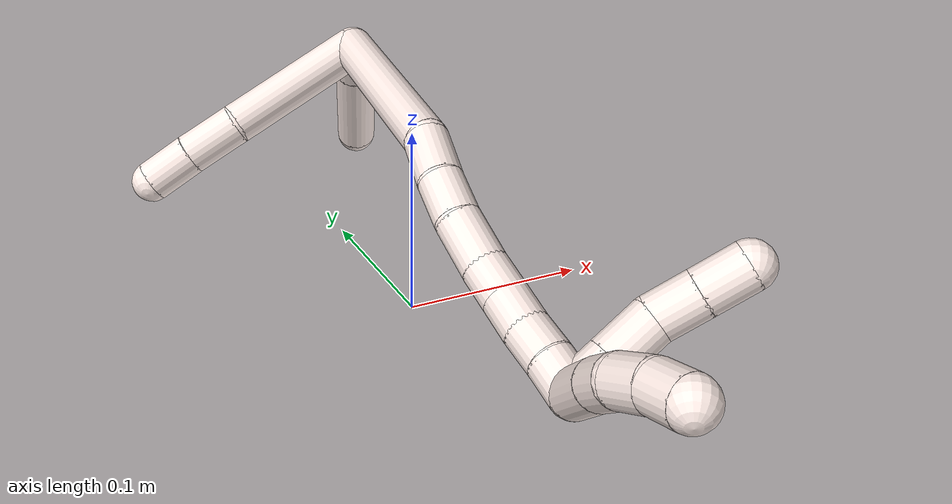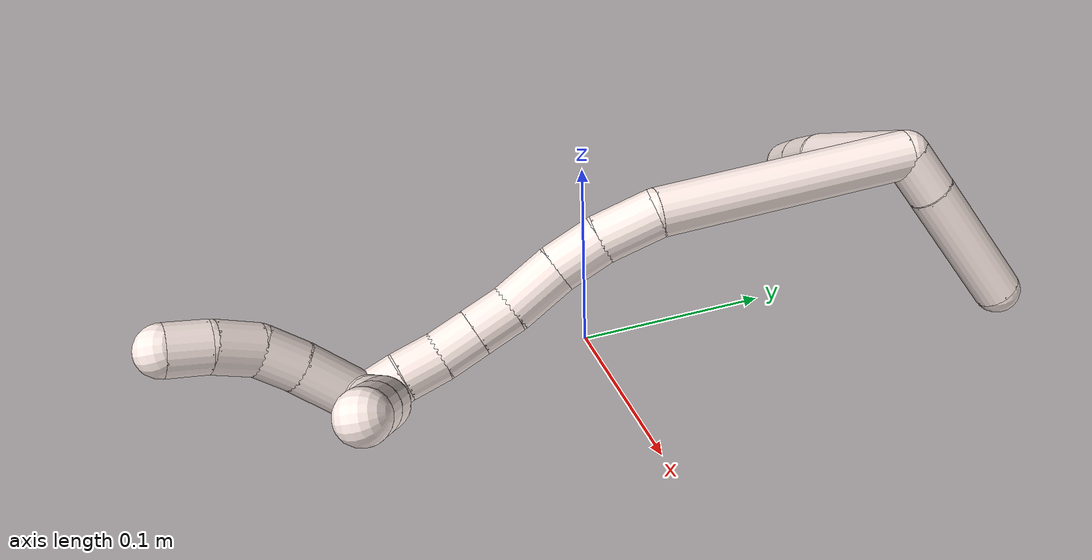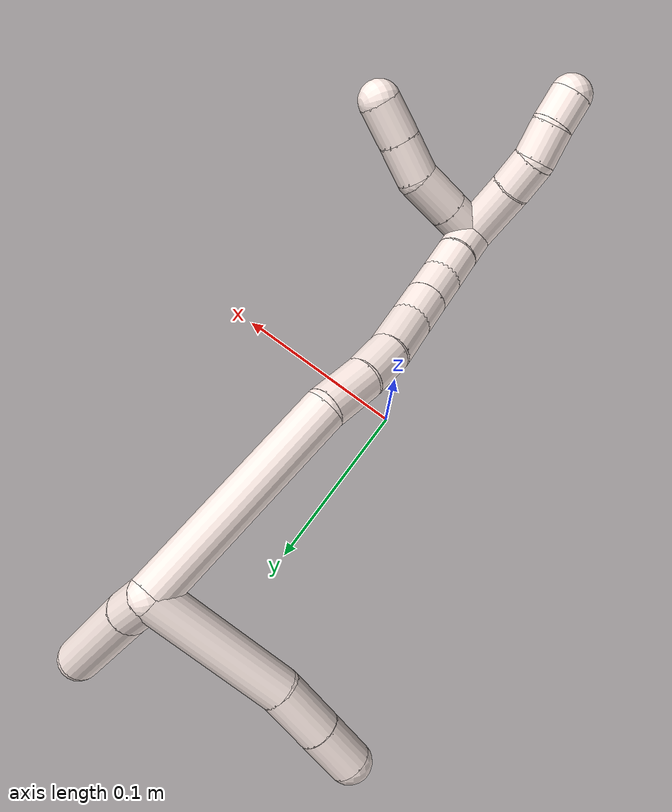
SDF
<sdf version="1.7">
 <world name="default">
  <model name="11">
   <static>0</static>
   <link name="11">
    <collision name="collision-cylinder-e_1_2_8">
     <pose>-0.031035 0.018632 -0.024499 -2.49139 -0.789532 1.78119</pose>
     <geometry><cylinder><radius>0.0125</radius><length>0.08742</length></cylinder></geometry>
     <surface>
      <friction><ode><mu>1.16</mu><mu2>1.16</mu2><slip1>0</slip1><slip2>0</slip2></ode></friction>
      <contact><ode><kp>1e+06</kp><kd>1</kd><max_vel>0</max_vel><min_depth>0.001</min_depth></ode></contact>
     </surface>
    </collision>
    <visual name="visual-cylinder-e_1_2_8">
     <pose>-0.031035 0.018632 -0.024499 -2.49139 -0.789532 1.78119</pose>
     <geometry><cylinder><radius>0.0125</radius><length>0.08742</length></cylinder></geometry>
     <material><ambient>1 0.933333 0.909804 1</ambient></material>
    </visual>
    <collision name="collision-cylinder-e_2_8_9">
     <pose>-0.074308 0.046354 -0.056192 -2.24022 -0.812494 1.45338</pose>
     <geometry><cylinder><radius>0.0125</radius><length>0.033712</length></cylinder></geometry>
     <surface>
      <friction><ode><mu>1.16</mu><mu2>1.16</mu2><slip1>0</slip1><slip2>0</slip2></ode></friction>
      <contact><ode><kp>1e+06</kp><kd>1</kd><max_vel>0</max_vel><min_depth>0.001</min_depth></ode></contact>
     </surface>
    </collision>
    <visual name="visual-cylinder-e_2_8_9">
     <pose>-0.074308 0.046354 -0.056192 -2.24022 -0.812494 1.45338</pose>
     <geometry><cylinder><radius>0.0125</radius><length>0.033712</length></cylinder></geometry>
     <material><ambient>1 0.933333 0.909804 1</ambient></material>
    </visual>
    <collision name="collision-cylinder-e_3_9_6">
     <pose>-0.09669 0.063643 -0.069566 -2.21685 -0.779414 1.37847</pose>
     <geometry><cylinder><radius>0.0125</radius><length>0.028868</length></cylinder></geometry>
     <surface>
      <friction><ode><mu>1.16</mu><mu2>1.16</mu2><slip1>0</slip1><slip2>0</slip2></ode></friction>
      <contact><ode><kp>1e+06</kp><kd>1</kd><max_vel>0</max_vel><min_depth>0.001</min_depth></ode></contact>
     </surface>
    </collision>
    <visual name="visual-cylinder-e_3_9_6">
     <pose>-0.09669 0.063643 -0.069566 -2.21685 -0.779414 1.37847</pose>
     <geometry><cylinder><radius>0.0125</radius><length>0.028868</length></cylinder></geometry>
     <material><ambient>1 0.933333 0.909804 1</ambient></material>
    </visual>
    <collision name="collision-cylinder-e_1_2_10">
     <pose>0.001802 0.011792 0.004264 -1.22382 0.142731 -0.10025</pose>
     <geometry><cylinder><radius>0.0125</radius><length>0.025336</length></cylinder></geometry>
     <surface>
      <friction><ode><mu>1.16</mu><mu2>1.16</mu2><slip1>0</slip1><slip2>0</slip2></ode></friction>
      <contact><ode><kp>1e+06</kp><kd>1</kd><max_vel>0</max_vel><min_depth>0.001</min_depth></ode></contact>
     </surface>
    </collision>
    <visual name="visual-cylinder-e_1_2_10">
     <pose>0.001802 0.011792 0.004264 -1.22382 0.142731 -0.10025</pose>
     <geometry><cylinder><radius>0.0125</radius><length>0.025336</length></cylinder></geometry>
     <material><ambient>1 0.933333 0.909804 1</ambient></material>
    </visual>
    <collision name="collision-cylinder-e_2_10_5">
     <pose>0.006908 0.058813 0.02043 -1.24501 0.088617 -0.06362</pose>
     <geometry><cylinder><radius>0.0125</radius><length>0.074664</length></cylinder></geometry>
     <surface>
      <friction><ode><mu>1.16</mu><mu2>1.16</mu2><slip1>0</slip1><slip2>0</slip2></ode></friction>
      <contact><ode><kp>1e+06</kp><kd>1</kd><max_vel>0</max_vel><min_depth>0.001</min_depth></ode></contact>
     </surface>
    </collision>
    <visual name="visual-cylinder-e_2_10_5">
     <pose>0.006908 0.058813 0.02043 -1.24501 0.088617 -0.06362</pose>
     <geometry><cylinder><radius>0.0125</radius><length>0.074664</length></cylinder></geometry>
     <material><ambient>1 0.933333 0.909804 1</ambient></material>
    </visual>
    <collision name="collision-cylinder-e_1_2_11">
     <pose>0.02507 -0.016226 -0.059191 2.87404 0.387788 1.93991</pose>
     <geometry><cylinder><radius>0.0125</radius><length>0.132595</length></cylinder></geometry>
     <surface>
      <friction><ode><mu>1.16</mu><mu2>1.16</mu2><slip1>0</slip1><slip2>0</slip2></ode></friction>
      <contact><ode><kp>1e+06</kp><kd>1</kd><max_vel>0</max_vel><min_depth>0.001</min_depth></ode></contact>
     </surface>
    </collision>
    <visual name="visual-cylinder-e_1_2_11">
     <pose>0.02507 -0.016226 -0.059191 2.87404 0.387788 1.93991</pose>
     <geometry><cylinder><radius>0.0125</radius><length>0.132595</length></cylinder></geometry>
     <material><ambient>1 0.933333 0.909804 1</ambient></material>
    </visual>
    <collision name="collision-cylinder-e_2_11_12">
     <pose>0.055137 -0.031484 -0.132849 -3.07481 0.331904 -2.74788</pose>
     <geometry><cylinder><radius>0.0125</radius><length>0.030672</length></cylinder></geometry>
     <surface>
      <friction><ode><mu>1.16</mu><mu2>1.16</mu2><slip1>0</slip1><slip2>0</slip2></ode></friction>
      <contact><ode><kp>1e+06</kp><kd>1</kd><max_vel>0</max_vel><min_depth>0.001</min_depth></ode></contact>
     </surface>
    </collision>
    <visual name="visual-cylinder-e_2_11_12">
     <pose>0.055137 -0.031484 -0.132849 -3.07481 0.331904 -2.74788</pose>
     <geometry><cylinder><radius>0.0125</radius><length>0.030672</length></cylinder></geometry>
     <material><ambient>1 0.933333 0.909804 1</ambient></material>
    </visual>
    <collision name="collision-cylinder-e_3_12_13">
     <pose>0.065627 -0.02849 -0.15872 -2.96576 0.442818 -2.39515</pose>
     <geometry><cylinder><radius>0.0125</radius><length>0.025638</length></cylinder></geometry>
     <surface>
      <friction><ode><mu>1.16</mu><mu2>1.16</mu2><slip1>0</slip1><slip2>0</slip2></ode></friction>
      <contact><ode><kp>1e+06</kp><kd>1</kd><max_vel>0</max_vel><min_depth>0.001</min_depth></ode></contact>
     </surface>
    </collision>
    <visual name="visual-cylinder-e_3_12_13">
     <pose>0.065627 -0.02849 -0.15872 -2.96576 0.442818 -2.39515</pose>
     <geometry><cylinder><radius>0.0125</radius><length>0.025638</length></cylinder></geometry>
     <material><ambient>1 0.933333 0.909804 1</ambient></material>
    </visual>
    <collision name="collision-cylinder-e_4_13_14">
     <pose>0.079207 -0.023412 -0.182154 -2.89312 0.577491 -2.34564</pose>
     <geometry><cylinder><radius>0.0125</radius><length>0.029627</length></cylinder></geometry>
     <surface>
      <friction><ode><mu>1.16</mu><mu2>1.16</mu2><slip1>0</slip1><slip2>0</slip2></ode></friction>
      <contact><ode><kp>1e+06</kp><kd>1</kd><max_vel>0</max_vel><min_depth>0.001</min_depth></ode></contact>
     </surface>
    </collision>
    <visual name="visual-cylinder-e_4_13_14">
     <pose>0.079207 -0.023412 -0.182154 -2.89312 0.577491 -2.34564</pose>
     <geometry><cylinder><radius>0.0125</radius><length>0.029627</length></cylinder></geometry>
     <material><ambient>1 0.933333 0.909804 1</ambient></material>
    </visual>
    <collision name="collision-cylinder-e_5_14_15">
     <pose>0.092863 -0.019667 -0.202787 -3.06127 0.57305 -2.87049</pose>
     <geometry><cylinder><radius>0.0125</radius><length>0.020544</length></cylinder></geometry>
     <surface>
      <friction><ode><mu>1.16</mu><mu2>1.16</mu2><slip1>0</slip1><slip2>0</slip2></ode></friction>
      <contact><ode><kp>1e+06</kp><kd>1</kd><max_vel>0</max_vel><min_depth>0.001</min_depth></ode></contact>
     </surface>
    </collision>
    <visual name="visual-cylinder-e_5_14_15">
     <pose>0.092863 -0.019667 -0.202787 -3.06127 0.57305 -2.87049</pose>
     <geometry><cylinder><radius>0.0125</radius><length>0.020544</length></cylinder></geometry>
     <material><ambient>1 0.933333 0.909804 1</ambient></material>
    </visual>
    <collision name="collision-cylinder-e_6_15_16">
     <pose>0.103885 -0.018253 -0.219866 -3.05667 0.570052 -2.85358</pose>
     <geometry><cylinder><radius>0.0125</radius><length>0.020208</length></cylinder></geometry>
     <surface>
      <friction><ode><mu>1.16</mu><mu2>1.16</mu2><slip1>0</slip1><slip2>0</slip2></ode></friction>
      <contact><ode><kp>1e+06</kp><kd>1</kd><max_vel>0</max_vel><min_depth>0.001</min_depth></ode></contact>
     </surface>
    </collision>
    <visual name="visual-cylinder-e_6_15_16">
     <pose>0.103885 -0.018253 -0.219866 -3.05667 0.570052 -2.85358</pose>
     <geometry><cylinder><radius>0.0125</radius><length>0.020208</length></cylinder></geometry>
     <material><ambient>1 0.933333 0.909804 1</ambient></material>
    </visual>
    <collision name="collision-cylinder-e_7_16_17">
     <pose>0.114833 -0.018013 -0.236988 3.08597 0.565385 2.95063</pose>
     <geometry><cylinder><radius>0.0125</radius><length>0.020512</length></cylinder></geometry>
     <surface>
      <friction><ode><mu>1.16</mu><mu2>1.16</mu2><slip1>0</slip1><slip2>0</slip2></ode></friction>
      <contact><ode><kp>1e+06</kp><kd>1</kd><max_vel>0</max_vel><min_depth>0.001</min_depth></ode></contact>
     </surface>
    </collision>
    <visual name="visual-cylinder-e_7_16_17">
     <pose>0.114833 -0.018013 -0.236988 3.08597 0.565385 2.95063</pose>
     <geometry><cylinder><radius>0.0125</radius><length>0.020512</length></cylinder></geometry>
     <material><ambient>1 0.933333 0.909804 1</ambient></material>
    </visual>
    <collision name="collision-cylinder-e_8_17_1">
     <pose>0.125778 -0.018125 -0.254132 -3.0982 0.569963 -2.99371</pose>
     <geometry><cylinder><radius>0.0125</radius><length>0.020204</length></cylinder></geometry>
     <surface>
      <friction><ode><mu>1.16</mu><mu2>1.16</mu2><slip1>0</slip1><slip2>0</slip2></ode></friction>
      <contact><ode><kp>1e+06</kp><kd>1</kd><max_vel>0</max_vel><min_depth>0.001</min_depth></ode></contact>
     </surface>
    </collision>
    <visual name="visual-cylinder-e_8_17_1">
     <pose>0.125778 -0.018125 -0.254132 -3.0982 0.569963 -2.99371</pose>
     <geometry><cylinder><radius>0.0125</radius><length>0.020204</length></cylinder></geometry>
     <material><ambient>1 0.933333 0.909804 1</ambient></material>
    </visual>
    <collision name="collision-cylinder-e_1_1_18">
     <pose>0.13269 -0.033422 -0.272005 2.11014 0.079853 0.140702</pose>
     <geometry><cylinder><radius>0.0125</radius><length>0.036632</length></cylinder></geometry>
     <surface>
      <friction><ode><mu>1.16</mu><mu2>1.16</mu2><slip1>0</slip1><slip2>0</slip2></ode></friction>
      <contact><ode><kp>1e+06</kp><kd>1</kd><max_vel>0</max_vel><min_depth>0.001</min_depth></ode></contact>
     </surface>
    </collision>
    <visual name="visual-cylinder-e_1_1_18">
     <pose>0.13269 -0.033422 -0.272005 2.11014 0.079853 0.140702</pose>
     <geometry><cylinder><radius>0.0125</radius><length>0.036632</length></cylinder></geometry>
     <material><ambient>1 0.933333 0.909804 1</ambient></material>
    </visual>
    <collision name="collision-cylinder-e_2_18_19">
     <pose>0.135729 -0.057746 -0.287086 2.15329 0.151031 0.279054</pose>
     <geometry><cylinder><radius>0.0125</radius><length>0.020975</length></cylinder></geometry>
     <surface>
      <friction><ode><mu>1.16</mu><mu2>1.16</mu2><slip1>0</slip1><slip2>0</slip2></ode></friction>
      <contact><ode><kp>1e+06</kp><kd>1</kd><max_vel>0</max_vel><min_depth>0.001</min_depth></ode></contact>
     </surface>
    </collision>
    <visual name="visual-cylinder-e_2_18_19">
     <pose>0.135729 -0.057746 -0.287086 2.15329 0.151031 0.279054</pose>
     <geometry><cylinder><radius>0.0125</radius><length>0.020975</length></cylinder></geometry>
     <material><ambient>1 0.933333 0.909804 1</ambient></material>
    </visual>
    <collision name="collision-cylinder-e_3_19_20">
     <pose>0.142193 -0.074043 -0.299239 2.27199 0.454559 0.924026</pose>
     <geometry><cylinder><radius>0.0125</radius><length>0.022253</length></cylinder></geometry>
     <surface>
      <friction><ode><mu>1.16</mu><mu2>1.16</mu2><slip1>0</slip1><slip2>0</slip2></ode></friction>
      <contact><ode><kp>1e+06</kp><kd>1</kd><max_vel>0</max_vel><min_depth>0.001</min_depth></ode></contact>
     </surface>
    </collision>
    <visual name="visual-cylinder-e_3_19_20">
     <pose>0.142193 -0.074043 -0.299239 2.27199 0.454559 0.924026</pose>
     <geometry><cylinder><radius>0.0125</radius><length>0.022253</length></cylinder></geometry>
     <material><ambient>1 0.933333 0.909804 1</ambient></material>
    </visual>
    <collision name="collision-cylinder-e_4_20_4">
     <pose>0.151739 -0.086934 -0.312905 2.51245 0.481232 1.29225</pose>
     <geometry><cylinder><radius>0.0125</radius><length>0.02014</length></cylinder></geometry>
     <surface>
      <friction><ode><mu>1.16</mu><mu2>1.16</mu2><slip1>0</slip1><slip2>0</slip2></ode></friction>
      <contact><ode><kp>1e+06</kp><kd>1</kd><max_vel>0</max_vel><min_depth>0.001</min_depth></ode></contact>
     </surface>
    </collision>
    <visual name="visual-cylinder-e_4_20_4">
     <pose>0.151739 -0.086934 -0.312905 2.51245 0.481232 1.29225</pose>
     <geometry><cylinder><radius>0.0125</radius><length>0.02014</length></cylinder></geometry>
     <material><ambient>1 0.933333 0.909804 1</ambient></material>
    </visual>
    <collision name="collision-cylinder-e_1_1_21">
     <pose>0.138168 -0.023725 -0.256216 0.749586 0.669869 0.272143</pose>
     <geometry><cylinder><radius>0.0125</radius><length>0.022351</length></cylinder></geometry>
     <surface>
      <friction><ode><mu>1.16</mu><mu2>1.16</mu2><slip1>0</slip1><slip2>0</slip2></ode></friction>
      <contact><ode><kp>1e+06</kp><kd>1</kd><max_vel>0</max_vel><min_depth>0.001</min_depth></ode></contact>
     </surface>
    </collision>
    <visual name="visual-cylinder-e_1_1_21">
     <pose>0.138168 -0.023725 -0.256216 0.749586 0.669869 0.272143</pose>
     <geometry><cylinder><radius>0.0125</radius><length>0.022351</length></cylinder></geometry>
     <material><ambient>1 0.933333 0.909804 1</ambient></material>
    </visual>
    <collision name="collision-cylinder-e_2_21_22">
     <pose>0.153788 -0.037162 -0.241776 0.749281 0.669725 0.27196</pose>
     <geometry><cylinder><radius>0.0125</radius><length>0.02797</length></cylinder></geometry>
     <surface>
      <friction><ode><mu>1.16</mu><mu2>1.16</mu2><slip1>0</slip1><slip2>0</slip2></ode></friction>
      <contact><ode><kp>1e+06</kp><kd>1</kd><max_vel>0</max_vel><min_depth>0.001</min_depth></ode></contact>
     </surface>
    </collision>
    <visual name="visual-cylinder-e_2_21_22">
     <pose>0.153788 -0.037162 -0.241776 0.749281 0.669725 0.27196</pose>
     <geometry><cylinder><radius>0.0125</radius><length>0.02797</length></cylinder></geometry>
     <material><ambient>1 0.933333 0.909804 1</ambient></material>
    </visual>
    <collision name="collision-cylinder-e_3_22_23">
     <pose>0.171459 -0.052251 -0.230363 1.15276 0.822917 0.552765</pose>
     <geometry><cylinder><radius>0.0125</radius><length>0.024523</length></cylinder></geometry>
     <surface>
      <friction><ode><mu>1.16</mu><mu2>1.16</mu2><slip1>0</slip1><slip2>0</slip2></ode></friction>
      <contact><ode><kp>1e+06</kp><kd>1</kd><max_vel>0</max_vel><min_depth>0.001</min_depth></ode></contact>
     </surface>
    </collision>
    <visual name="visual-cylinder-e_3_22_23">
     <pose>0.171459 -0.052251 -0.230363 1.15276 0.822917 0.552765</pose>
     <geometry><cylinder><radius>0.0125</radius><length>0.024523</length></cylinder></geometry>
     <material><ambient>1 0.933333 0.909804 1</ambient></material>
    </visual>
    <collision name="collision-cylinder-e_4_23_3">
     <pose>0.189681 -0.067605 -0.223352 1.13239 0.824257 0.542058</pose>
     <geometry><cylinder><radius>0.0125</radius><length>0.025155</length></cylinder></geometry>
     <surface>
      <friction><ode><mu>1.16</mu><mu2>1.16</mu2><slip1>0</slip1><slip2>0</slip2></ode></friction>
      <contact><ode><kp>1e+06</kp><kd>1</kd><max_vel>0</max_vel><min_depth>0.001</min_depth></ode></contact>
     </surface>
    </collision>
    <visual name="visual-cylinder-e_4_23_3">
     <pose>0.189681 -0.067605 -0.223352 1.13239 0.824257 0.542058</pose>
     <geometry><cylinder><radius>0.0125</radius><length>0.025155</length></cylinder></geometry>
     <material><ambient>1 0.933333 0.909804 1</ambient></material>
    </visual>
    <collision name="collision-sphere-3">
     <pose>0.198914 -0.075339 -0.219726 0 -0 0</pose>
     <geometry><sphere><radius>0.0125</radius></sphere></geometry>
     <surface>
      <friction><ode><mu>1.16</mu><mu2>1.16</mu2><slip1>0</slip1><slip2>0</slip2></ode></friction>
      <contact><ode><kp>1e+06</kp><kd>1</kd><max_vel>0</max_vel><min_depth>0.001</min_depth></ode></contact>
     </surface>
    </collision>
    <visual name="visual-sphere-3">
     <pose>0.198914 -0.075339 -0.219726 0 -0 0</pose>
     <geometry><sphere><radius>0.0125</radius></sphere></geometry>
     <material><ambient>1 0.933333 0.909804 1</ambient></material>
    </visual>
    <collision name="collision-sphere-23">
     <pose>0.180449 -0.059872 -0.226978 0 -0 0</pose>
     <geometry><sphere><radius>0.0125</radius></sphere></geometry>
     <surface>
      <friction><ode><mu>1.16</mu><mu2>1.16</mu2><slip1>0</slip1><slip2>0</slip2></ode></friction>
      <contact><ode><kp>1e+06</kp><kd>1</kd><max_vel>0</max_vel><min_depth>0.001</min_depth></ode></contact>
     </surface>
    </collision>
    <visual name="visual-sphere-23">
     <pose>0.180449 -0.059872 -0.226978 0 -0 0</pose>
     <geometry><sphere><radius>0.0125</radius></sphere></geometry>
     <material><ambient>1 0.933333 0.909804 1</ambient></material>
    </visual>
    <collision name="collision-sphere-22">
     <pose>0.16247 -0.04463 -0.233748 0 -0 0</pose>
     <geometry><sphere><radius>0.0125</radius></sphere></geometry>
     <surface>
      <friction><ode><mu>1.16</mu><mu2>1.16</mu2><slip1>0</slip1><slip2>0</slip2></ode></friction>
      <contact><ode><kp>1e+06</kp><kd>1</kd><max_vel>0</max_vel><min_depth>0.001</min_depth></ode></contact>
     </surface>
    </collision>
    <visual name="visual-sphere-22">
     <pose>0.16247 -0.04463 -0.233748 0 -0 0</pose>
     <geometry><sphere><radius>0.0125</radius></sphere></geometry>
     <material><ambient>1 0.933333 0.909804 1</ambient></material>
    </visual>
    <collision name="collision-sphere-21">
     <pose>0.145107 -0.029694 -0.249804 0 -0 0</pose>
     <geometry><sphere><radius>0.0125</radius></sphere></geometry>
     <surface>
      <friction><ode><mu>1.16</mu><mu2>1.16</mu2><slip1>0</slip1><slip2>0</slip2></ode></friction>
      <contact><ode><kp>1e+06</kp><kd>1</kd><max_vel>0</max_vel><min_depth>0.001</min_depth></ode></contact>
     </surface>
    </collision>
    <visual name="visual-sphere-21">
     <pose>0.145107 -0.029694 -0.249804 0 -0 0</pose>
     <geometry><sphere><radius>0.0125</radius></sphere></geometry>
     <material><ambient>1 0.933333 0.909804 1</ambient></material>
    </visual>
    <collision name="collision-sphere-4">
     <pose>0.1564 -0.092187 -0.320122 0 -0 0</pose>
     <geometry><sphere><radius>0.0125</radius></sphere></geometry>
     <surface>
      <friction><ode><mu>1.16</mu><mu2>1.16</mu2><slip1>0</slip1><slip2>0</slip2></ode></friction>
      <contact><ode><kp>1e+06</kp><kd>1</kd><max_vel>0</max_vel><min_depth>0.001</min_depth></ode></contact>
     </surface>
    </collision>
    <visual name="visual-sphere-4">
     <pose>0.1564 -0.092187 -0.320122 0 -0 0</pose>
     <geometry><sphere><radius>0.0125</radius></sphere></geometry>
     <material><ambient>1 0.933333 0.909804 1</ambient></material>
    </visual>
    <collision name="collision-sphere-20">
     <pose>0.147078 -0.081681 -0.305688 0 -0 0</pose>
     <geometry><sphere><radius>0.0125</radius></sphere></geometry>
     <surface>
      <friction><ode><mu>1.16</mu><mu2>1.16</mu2><slip1>0</slip1><slip2>0</slip2></ode></friction>
      <contact><ode><kp>1e+06</kp><kd>1</kd><max_vel>0</max_vel><min_depth>0.001</min_depth></ode></contact>
     </surface>
    </collision>
    <visual name="visual-sphere-20">
     <pose>0.147078 -0.081681 -0.305688 0 -0 0</pose>
     <geometry><sphere><radius>0.0125</radius></sphere></geometry>
     <material><ambient>1 0.933333 0.909804 1</ambient></material>
    </visual>
    <collision name="collision-sphere-5">
     <pose>0.010212 0.094043 0.032331 0 -0 0</pose>
     <geometry><sphere><radius>0.0125</radius></sphere></geometry>
     <surface>
      <friction><ode><mu>1.16</mu><mu2>1.16</mu2><slip1>0</slip1><slip2>0</slip2></ode></friction>
      <contact><ode><kp>1e+06</kp><kd>1</kd><max_vel>0</max_vel><min_depth>0.001</min_depth></ode></contact>
     </surface>
    </collision>
    <visual name="visual-sphere-5">
     <pose>0.010212 0.094043 0.032331 0 -0 0</pose>
     <geometry><sphere><radius>0.0125</radius></sphere></geometry>
     <material><ambient>1 0.933333 0.909804 1</ambient></material>
    </visual>
    <collision name="collision-sphere-10">
     <pose>0.003604 0.023584 0.008528 0 -0 0</pose>
     <geometry><sphere><radius>0.0125</radius></sphere></geometry>
     <surface>
      <friction><ode><mu>1.16</mu><mu2>1.16</mu2><slip1>0</slip1><slip2>0</slip2></ode></friction>
      <contact><ode><kp>1e+06</kp><kd>1</kd><max_vel>0</max_vel><min_depth>0.001</min_depth></ode></contact>
     </surface>
    </collision>
    <visual name="visual-sphere-10">
     <pose>0.003604 0.023584 0.008528 0 -0 0</pose>
     <geometry><sphere><radius>0.0125</radius></sphere></geometry>
     <material><ambient>1 0.933333 0.909804 1</ambient></material>
    </visual>
    <collision name="collision-sphere-6">
     <pose>-0.106836 0.071841 -0.075748 0 -0 0</pose>
     <geometry><sphere><radius>0.0125</radius></sphere></geometry>
     <surface>
      <friction><ode><mu>1.16</mu><mu2>1.16</mu2><slip1>0</slip1><slip2>0</slip2></ode></friction>
      <contact><ode><kp>1e+06</kp><kd>1</kd><max_vel>0</max_vel><min_depth>0.001</min_depth></ode></contact>
     </surface>
    </collision>
    <visual name="visual-sphere-6">
     <pose>-0.106836 0.071841 -0.075748 0 -0 0</pose>
     <geometry><sphere><radius>0.0125</radius></sphere></geometry>
     <material><ambient>1 0.933333 0.909804 1</ambient></material>
    </visual>
    <collision name="collision-sphere-9">
     <pose>-0.086545 0.055444 -0.063385 0 -0 0</pose>
     <geometry><sphere><radius>0.0125</radius></sphere></geometry>
     <surface>
      <friction><ode><mu>1.16</mu><mu2>1.16</mu2><slip1>0</slip1><slip2>0</slip2></ode></friction>
      <contact><ode><kp>1e+06</kp><kd>1</kd><max_vel>0</max_vel><min_depth>0.001</min_depth></ode></contact>
     </surface>
    </collision>
    <visual name="visual-sphere-9">
     <pose>-0.086545 0.055444 -0.063385 0 -0 0</pose>
     <geometry><sphere><radius>0.0125</radius></sphere></geometry>
     <material><ambient>1 0.933333 0.909804 1</ambient></material>
    </visual>
    <collision name="collision-sphere-2">
     <geometry><sphere><radius>0.0125</radius></sphere></geometry>
     <surface>
      <friction><ode><mu>1.16</mu><mu2>1.16</mu2><slip1>0</slip1><slip2>0</slip2></ode></friction>
      <contact><ode><kp>1e+06</kp><kd>1</kd><max_vel>0</max_vel><min_depth>0.001</min_depth></ode></contact>
     </surface>
    </collision>
    <visual name="visual-sphere-2">
     <geometry><sphere><radius>0.0125</radius></sphere></geometry>
     <material><ambient>1 0.933333 0.909804 1</ambient></material>
    </visual>
    <collision name="collision-sphere-19">
     <pose>0.137307 -0.066405 -0.292789 0 -0 0</pose>
     <geometry><sphere><radius>0.0125</radius></sphere></geometry>
     <surface>
      <friction><ode><mu>1.16</mu><mu2>1.16</mu2><slip1>0</slip1><slip2>0</slip2></ode></friction>
      <contact><ode><kp>1e+06</kp><kd>1</kd><max_vel>0</max_vel><min_depth>0.001</min_depth></ode></contact>
     </surface>
    </collision>
    <visual name="visual-sphere-19">
     <pose>0.137307 -0.066405 -0.292789 0 -0 0</pose>
     <geometry><sphere><radius>0.0125</radius></sphere></geometry>
     <material><ambient>1 0.933333 0.909804 1</ambient></material>
    </visual>
    <collision name="collision-sphere-8">
     <pose>-0.06207 0.037264 -0.048999 0 -0 0</pose>
     <geometry><sphere><radius>0.0125</radius></sphere></geometry>
     <surface>
      <friction><ode><mu>1.16</mu><mu2>1.16</mu2><slip1>0</slip1><slip2>0</slip2></ode></friction>
      <contact><ode><kp>1e+06</kp><kd>1</kd><max_vel>0</max_vel><min_depth>0.001</min_depth></ode></contact>
     </surface>
    </collision>
    <visual name="visual-sphere-8">
     <pose>-0.06207 0.037264 -0.048999 0 -0 0</pose>
     <geometry><sphere><radius>0.0125</radius></sphere></geometry>
     <material><ambient>1 0.933333 0.909804 1</ambient></material>
    </visual>
    <collision name="collision-sphere-11">
     <pose>0.050139 -0.032451 -0.118382 0 -0 0</pose>
     <geometry><sphere><radius>0.0125</radius></sphere></geometry>
     <surface>
      <friction><ode><mu>1.16</mu><mu2>1.16</mu2><slip1>0</slip1><slip2>0</slip2></ode></friction>
      <contact><ode><kp>1e+06</kp><kd>1</kd><max_vel>0</max_vel><min_depth>0.001</min_depth></ode></contact>
     </surface>
    </collision>
    <visual name="visual-sphere-11">
     <pose>0.050139 -0.032451 -0.118382 0 -0 0</pose>
     <geometry><sphere><radius>0.0125</radius></sphere></geometry>
     <material><ambient>1 0.933333 0.909804 1</ambient></material>
    </visual>
    <collision name="collision-sphere-12">
     <pose>0.060134 -0.030516 -0.147316 0 -0 0</pose>
     <geometry><sphere><radius>0.0125</radius></sphere></geometry>
     <surface>
      <friction><ode><mu>1.16</mu><mu2>1.16</mu2><slip1>0</slip1><slip2>0</slip2></ode></friction>
      <contact><ode><kp>1e+06</kp><kd>1</kd><max_vel>0</max_vel><min_depth>0.001</min_depth></ode></contact>
     </surface>
    </collision>
    <visual name="visual-sphere-12">
     <pose>0.060134 -0.030516 -0.147316 0 -0 0</pose>
     <geometry><sphere><radius>0.0125</radius></sphere></geometry>
     <material><ambient>1 0.933333 0.909804 1</ambient></material>
    </visual>
    <collision name="collision-sphere-13">
     <pose>0.07112 -0.026464 -0.170124 0 -0 0</pose>
     <geometry><sphere><radius>0.0125</radius></sphere></geometry>
     <surface>
      <friction><ode><mu>1.16</mu><mu2>1.16</mu2><slip1>0</slip1><slip2>0</slip2></ode></friction>
      <contact><ode><kp>1e+06</kp><kd>1</kd><max_vel>0</max_vel><min_depth>0.001</min_depth></ode></contact>
     </surface>
    </collision>
    <visual name="visual-sphere-13">
     <pose>0.07112 -0.026464 -0.170124 0 -0 0</pose>
     <geometry><sphere><radius>0.0125</radius></sphere></geometry>
     <material><ambient>1 0.933333 0.909804 1</ambient></material>
    </visual>
    <collision name="collision-sphere-14">
     <pose>0.087293 -0.020359 -0.194184 0 -0 0</pose>
     <geometry><sphere><radius>0.0125</radius></sphere></geometry>
     <surface>
      <friction><ode><mu>1.16</mu><mu2>1.16</mu2><slip1>0</slip1><slip2>0</slip2></ode></friction>
      <contact><ode><kp>1e+06</kp><kd>1</kd><max_vel>0</max_vel><min_depth>0.001</min_depth></ode></contact>
     </surface>
    </collision>
    <visual name="visual-sphere-14">
     <pose>0.087293 -0.020359 -0.194184 0 -0 0</pose>
     <geometry><sphere><radius>0.0125</radius></sphere></geometry>
     <material><ambient>1 0.933333 0.909804 1</ambient></material>
    </visual>
    <collision name="collision-sphere-15">
     <pose>0.098432 -0.018974 -0.21139 0 -0 0</pose>
     <geometry><sphere><radius>0.0125</radius></sphere></geometry>
     <surface>
      <friction><ode><mu>1.16</mu><mu2>1.16</mu2><slip1>0</slip1><slip2>0</slip2></ode></friction>
      <contact><ode><kp>1e+06</kp><kd>1</kd><max_vel>0</max_vel><min_depth>0.001</min_depth></ode></contact>
     </surface>
    </collision>
    <visual name="visual-sphere-15">
     <pose>0.098432 -0.018974 -0.21139 0 -0 0</pose>
     <geometry><sphere><radius>0.0125</radius></sphere></geometry>
     <material><ambient>1 0.933333 0.909804 1</ambient></material>
    </visual>
    <collision name="collision-sphere-16">
     <pose>0.109338 -0.017531 -0.228341 0 -0 0</pose>
     <geometry><sphere><radius>0.0125</radius></sphere></geometry>
     <surface>
      <friction><ode><mu>1.16</mu><mu2>1.16</mu2><slip1>0</slip1><slip2>0</slip2></ode></friction>
      <contact><ode><kp>1e+06</kp><kd>1</kd><max_vel>0</max_vel><min_depth>0.001</min_depth></ode></contact>
     </surface>
    </collision>
    <visual name="visual-sphere-16">
     <pose>0.109338 -0.017531 -0.228341 0 -0 0</pose>
     <geometry><sphere><radius>0.0125</radius></sphere></geometry>
     <material><ambient>1 0.933333 0.909804 1</ambient></material>
    </visual>
    <collision name="collision-sphere-17">
     <pose>0.120327 -0.018494 -0.245634 0 -0 0</pose>
     <geometry><sphere><radius>0.0125</radius></sphere></geometry>
     <surface>
      <friction><ode><mu>1.16</mu><mu2>1.16</mu2><slip1>0</slip1><slip2>0</slip2></ode></friction>
      <contact><ode><kp>1e+06</kp><kd>1</kd><max_vel>0</max_vel><min_depth>0.001</min_depth></ode></contact>
     </surface>
    </collision>
    <visual name="visual-sphere-17">
     <pose>0.120327 -0.018494 -0.245634 0 -0 0</pose>
     <geometry><sphere><radius>0.0125</radius></sphere></geometry>
     <material><ambient>1 0.933333 0.909804 1</ambient></material>
    </visual>
    <collision name="collision-sphere-1">
     <pose>0.131229 -0.017756 -0.262629 0 -0 0</pose>
     <geometry><sphere><radius>0.0125</radius></sphere></geometry>
     <surface>
      <friction><ode><mu>1.16</mu><mu2>1.16</mu2><slip1>0</slip1><slip2>0</slip2></ode></friction>
      <contact><ode><kp>1e+06</kp><kd>1</kd><max_vel>0</max_vel><min_depth>0.001</min_depth></ode></contact>
     </surface>
    </collision>
    <visual name="visual-sphere-1">
     <pose>0.131229 -0.017756 -0.262629 0 -0 0</pose>
     <geometry><sphere><radius>0.0125</radius></sphere></geometry>
     <material><ambient>1 0.933333 0.909804 1</ambient></material>
    </visual>
    <collision name="collision-sphere-18">
     <pose>0.134151 -0.049088 -0.281382 0 -0 0</pose>
     <geometry><sphere><radius>0.0125</radius></sphere></geometry>
     <surface>
      <friction><ode><mu>1.16</mu><mu2>1.16</mu2><slip1>0</slip1><slip2>0</slip2></ode></friction>
      <contact><ode><kp>1e+06</kp><kd>1</kd><max_vel>0</max_vel><min_depth>0.001</min_depth></ode></contact>
     </surface>
    </collision>
    <visual name="visual-sphere-18">
     <pose>0.134151 -0.049088 -0.281382 0 -0 0</pose>
     <geometry><sphere><radius>0.0125</radius></sphere></geometry>
     <material><ambient>1 0.933333 0.909804 1</ambient></material>
    </visual>
    <inertial>
     <pose>0.054392 -0.008956 -0.129478 0 -0 0</pose>
     <mass>0.75</mass>
     <inertia>
      <ixx>0.000194</ixx>
      <ixy>0</ixy>
      <ixz>0</ixz>
      <iyy>0.000374</iyy>
      <iyz>0</iyz>
      <izz>-7.9e-05</izz>
     </inertia>
    </inertial>
   </link>
   <pose>0.033801 0.161885 0.093204 -1.27898 0.17304 -0.465977</pose>
  </model>
 </world>
</sdf>
